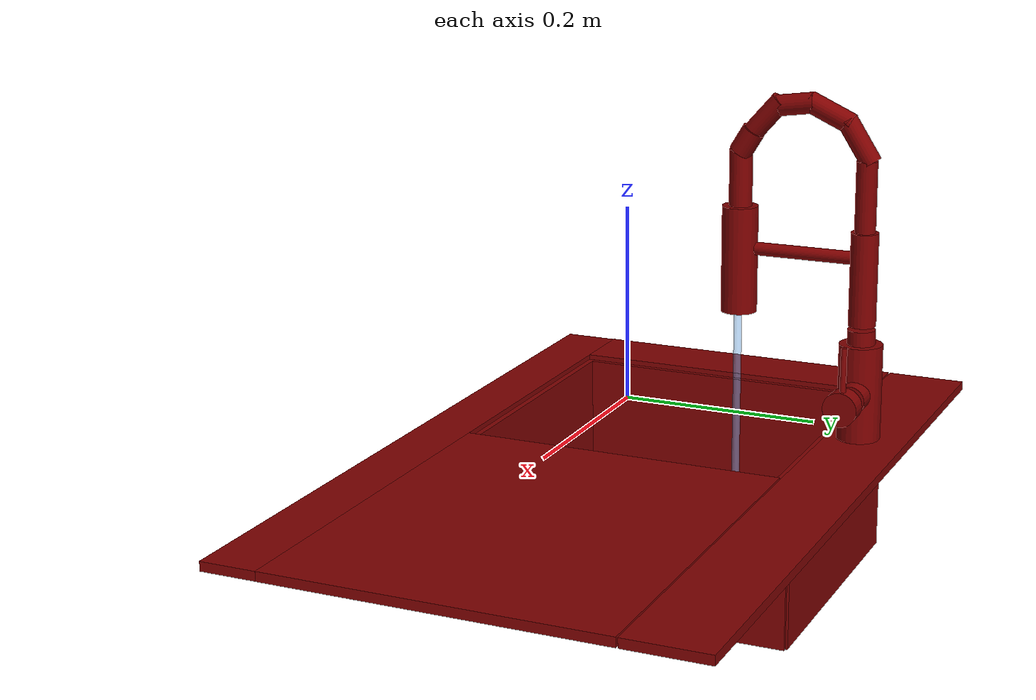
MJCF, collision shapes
<?xml version='1.0' encoding='UTF-8'?>
<mujoco model="model">
  <option timestep="0.002" gravity="0.0 0.0 -9.81"/>
  <compiler angle="radian"/>
  <asset>
    <mesh file="visuals/handle.obj" name="handle_vis"/>
    <mesh file="visuals/Body001.obj" name="Body001_vis"/>
    <mesh file="visuals/spout.obj" name="spout_vis"/>
    <texture file="visuals/T_BC001.png" name="Body001_material" type="2d"/>
    <material name="Body001_material" rgba="1 1 1 1.0" texture="Body001_material" shininess="0.4472135901451111" specular="0.3103448502657381"/>
    <texture file="visuals/T_BC001.png" name="handle_material" type="2d"/>
    <material name="handle_material" rgba="1 1 1 1.0" texture="handle_material" shininess="0.4472135901451111" specular="1"/>
    <texture file="visuals/T_BC001.png" name="spout_material" type="2d"/>
    <material name="spout_material" rgba="1 1 1 1.0" texture="spout_material" shininess="0.4472135901451111" specular="1"/>
  </asset>
  <default>
    <default class="visual">
      <geom conaffinity="0" contype="0" group="1" type="mesh"/>
    </default>
    <default class="collision">
      <geom group="0" rgba="0.5 0 0 0.5" solimp="0.998 0.998 0.001" solref="0.001 2"/>
    </default>
    <default class="spawn">
      <geom group="0" rgba="1 1 1 0.5" contype="0" conaffinity="0"/>
      <site group="0" rgba="1 1 1 0.5"/>
    </default>
    <default class="region">
      <geom group="1" conaffinity="0" contype="0" rgba="0 1 0 0"/>
    </default>
  </default>
  <worldbody>
    <body>
      <body name="object">
        <geom mesh="Body001_vis" type="mesh" solimp="0.998 0.998 0.001" solref="0.001 1" friction="0.95 0.3 0.1" class="visual" material="Body001_material"/>
        <geom type="box" pos="-0.17462649 -0.01675818 -0.25743395" size="0.15021800994873047 0.1736966073513031 0.0008237372967414558" quat="1.0 0.0 0.0 0.0" class="collision"/>
        <geom type="box" pos="-0.00005962 -0.22175469 -0.07358859" size="0.4024573862552643 0.029771815985441208 0.004993463400751352" quat="1.0 0.0 0.0 0.0" class="collision"/>
        <geom type="box" pos="0.00002018 0.20791146 -0.07356735" size="0.4025282561779022 0.043647401034832 0.0050147222355008125" quat="1.0 0.0 0.0 0.0" class="collision"/>
        <geom type="box" pos="-0.36608941 -0.01465240 -0.07345046" size="0.03667639195919037 0.17720961570739746 0.005131593439728022" quat="1.0 0.0 0.0 0.0" class="collision"/>
        <geom type="box" pos="0.19458005 -0.01465240 -0.07351969" size="0.20796838402748108 0.17720964550971985 0.005062346812337637" quat="1.0 0.0 0.0 0.0" class="collision"/>
        <geom type="box" pos="-0.17270378 -0.19338624 -0.16536510" size="0.15964625775814056 0.008025255985558033 0.09124521911144257" quat="1.0 0.0 0.0 0.0" class="collision"/>
        <geom type="box" pos="-0.01688968 -0.01094567 -0.16536523" size="0.008025319315493107 0.1836344450712204 0.09124530851840973" quat="1.0 0.0 0.0 0.0" class="collision"/>
        <geom type="box" pos="-0.33145739 -0.01094564 -0.16536538" size="0.008025317452847958 0.18363440036773682 0.09124527871608734" quat="1.0 0.0 0.0 0.0" class="collision"/>
        <geom type="box" pos="-0.17270378 0.16505067 -0.16536529" size="0.15964625775814056 0.010186362080276012 0.09124525636434555" quat="1.0 0.0 0.0 0.0" class="collision"/>
        <geom type="cylinder" pos="-0.16517578 0.19767201 -0.01823673" size="0.023443039506673813 0.05424214154481888" quat="1.0 -1.8237584971944956e-15 0.0 0.0" class="collision"/>
        <geom type="cylinder" pos="-0.16517578 0.19767201 0.04279619" size="0.015013178810477257 0.009217644110321999" quat="1.0 -1.8237584971944956e-15 0.0 0.0" class="collision"/>
        <geom type="cylinder" pos="-0.13696488 0.19849768 -0.01632117" size="0.016235442832112312 0.010867130011320114" quat="0.7051935791969299 -6.3438906905410875e-12 0.7090148329734802 9.523659372234761e-08" class="collision"/>
        <geom type="cylinder" pos="-0.17232015 0.00535607 -0.27648872" size="0.042162276804447174 0.01823129504919052" quat="1.0 0.0 0.0 0.0" class="collision"/>
        <body name="handle">
          <joint axis="1.0 0.0 0.0" pos="-0.10478451 0.19924854 -0.01567544" limited="true" name="handle_temp_joint" type="hinge" range="-0.7853981633974483 0.7853981633974483" damping="0.5" frictionloss="1" armature="2"/>
          <joint axis="0.0 1.0 0.0" pos="-0.10478451 0.19924854 -0.01567544" limited="true" name="handle_joint" type="hinge" range="0 0.5" damping="0.5" frictionloss="1" armature="2"/>
          <geom mesh="handle_vis" type="mesh" solimp="0.998 0.998 0.001" solref="0.001 1" friction="0.95 0.3 0.1" class="visual" material="handle_material"/>
          <geom type="cylinder" pos="-0.10113013 0.19849771 -0.01555669" size="0.018503012135624886 0.010279472917318344" quat="0.7051935791969299 -6.3438906905410875e-12 0.7090148329734802 9.523659372234761e-08" class="collision"/>
          <geom name="handle_main" type="cylinder" pos="-0.09756843 0.19971254 0.02264243" size="0.0032653282396495342 0.027250390499830246" quat="0.9999913573265076 1.3009839245400195e-13 -0.004157534800469875 -5.585981122102623e-10" class="collision"/>
        </body>
        <body name="spout">
          <joint axis="0.0 0.0 1.0" pos="-0.16471953 0.19774088 0.16800553" limited="true" name="spout_joint" range="-0.7853981633974483 0.7853981633974483" type="hinge" damping="10"/>
          <site type="cylinder" rgba="0.5 0.75 1 0.5" size="0.004266842734068632 0.1593114584684372" pos="-0.16262632 0.05965479 -0.10095969" name="water"/>
          <geom mesh="spout_vis" type="mesh" solimp="0.998 0.998 0.001" solref="0.001 1" friction="0.95 0.3 0.1" class="visual" material="spout_material"/>
          <geom type="cylinder" pos="-0.16490055 0.19794722 0.10633916" size="0.014699677005410194 0.050279878079891205" quat="1.0 -1.8237584971944956e-15 0.0 0.0" class="collision"/>
          <geom type="cylinder" pos="-0.16517578 0.19767199 0.19352908" size="0.01120044570416212 0.03831084072589874" quat="1.0 -1.8237584971944956e-15 0.0 0.0" class="collision"/>
          <geom type="cylinder" pos="-0.16517578 0.18863596 0.25107449" size="0.01120044570416212 0.02547653578221798" quat="0.9593374729156494 0.28226161003112793 -6.267466768486506e-17 -1.38730607210171e-25" class="collision"/>
          <geom type="cylinder" pos="-0.16517578 0.15671034 0.27914697" size="0.01120044570416212 0.025476541370153427" quat="0.8404239416122437 0.5419295430183411 -1.203325312767103e-16 -2.5543239197118103e-24" class="collision"/>
          <geom type="cylinder" pos="-0.16465230 0.11823454 0.28558722" size="0.01120044570416212 0.02174557000398636" quat="0.65557461977005 0.755130410194397 -1.676726203636019e-16 -4.94466140659854e-24" class="collision"/>
          <geom type="cylinder" pos="-0.16324923 0.06671323 0.24336834" size="0.012502557598054409 0.01421136874705553" quat="0.26908019185066223 0.963117778301239 -2.138551065791725e-16 -4.641503738443915e-25" class="collision"/>
          <geom type="cylinder" pos="-0.16517578 0.05959039 0.20208523" size="0.012454117648303509 0.03192519024014473" quat="0.0002859393716789782 -0.9999999403953552 2.2204531960908055e-16 -2.368643094129728e-22" class="collision"/>
          <geom type="cylinder" pos="-0.16517576 0.06038303 0.20208520" size="0.011054271832108498 0.03192519024014473" quat="0.0002859393716789782 -0.9999999403953552 2.2204531960908055e-16 -2.368643094129728e-22" class="collision"/>
          <geom type="cylinder" pos="-0.16490057 0.05963232 0.11545447" size="0.01948469690978527 0.057862669229507446" quat="1.0 -1.8237584971944956e-15 0.0 0.0" class="collision" name="spout_main"/>
          <geom type="cylinder" pos="-0.16490057 0.13211092 0.12800983" size="0.007005923893302679 0.05968574434518814" quat="0.7071068286895752 0.7071067690849304 -1.5776961407011706e-16 -7.678365040593655e-19" class="collision"/>
          <geom type="cylinder" pos="-0.16408202 0.08669423 0.26923907" size="0.01120044570416212 0.02547653578221798" quat="0.3535419702529907 0.9354186654090881 -2.0770468123515083e-16 1.2017664013457033e-23" class="collision"/>
        </body>
        <geom class="region" name="reg_basin" type="box" pos="-0.173292995 -0.016166589999999995 -0.16235104499999997" size="0.133047005 0.15411941 0.09446171499999999"/>
        <geom class="region" name="reg_main" type="box" pos="-3.00000000119649e-08 -1.1999999999234845e-07 -0.18146969500000001" size="0.40376586999999997 0.25270389 0.114261415"/>
      </body>
    </body>
  </worldbody>
  <actuator>
    <motor name="handle_joint_actuator" joint="handle_joint" gear="10"/>
    <motor name="handle_temp_joint_actuator" joint="handle_temp_joint" gear="10"/>
    <motor name="spout_joint_actuator" joint="spout_joint" gear="10"/>
  </actuator>
</mujoco>
